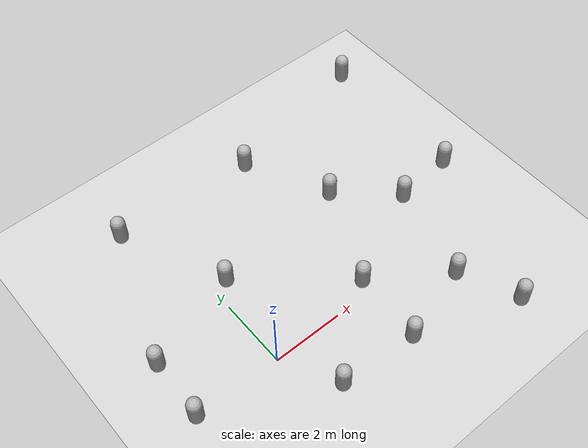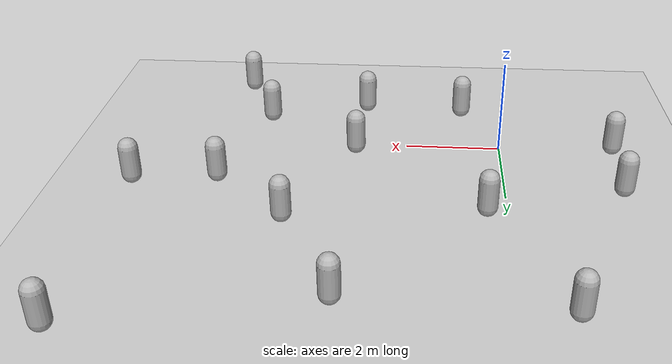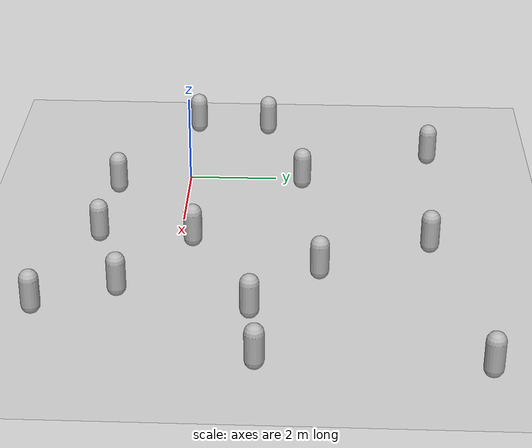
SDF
<sdf version='1.10'>
  <world name='empty'>
    <physics name='1ms' type='ignored'>
      <max_step_size>0.001</max_step_size>
      <real_time_factor>1</real_time_factor>
      <real_time_update_rate>1000</real_time_update_rate>
    </physics>
    <plugin name='gz::sim::systems::Physics' filename='gz-sim-physics-system'/>
    <plugin name='gz::sim::systems::UserCommands' filename='gz-sim-user-commands-system'/>
    <plugin name='gz::sim::systems::SceneBroadcaster' filename='gz-sim-scene-broadcaster-system'/>
    <plugin name='gz::sim::systems::Contact' filename='gz-sim-contact-system'/>
    <gravity>0 0 -9.8000000000000007</gravity>
    <magnetic_field>5.5644999999999998e-06 2.2875799999999999e-05 -4.2388400000000002e-05</magnetic_field>
    <atmosphere type='adiabatic'/>
    <scene>
      <ambient>0.400000006 0.400000006 0.400000006 1</ambient>
      <background>0.699999988 0.699999988 0.699999988 1</background>
      <shadows>true</shadows>
    </scene>
    <model name='ground_plane'>
      <static>true</static>
      <link name='link'>
        <collision name='collision'>
          <geometry>
            <plane>
              <normal>0 0 1</normal>
              <size>100 100</size>
            </plane>
          </geometry>
          <surface>
            <friction>
              <ode/>
            </friction>
            <bounce/>
            <contact/>
          </surface>
        </collision>
        <visual name='visual'>
          <geometry>
            <plane>
              <normal>0 0 1</normal>
              <size>100 100</size>
            </plane>
          </geometry>
          <material>
            <ambient>0.800000012 0.800000012 0.800000012 1</ambient>
            <diffuse>0.800000012 0.800000012 0.800000012 1</diffuse>
            <specular>0.800000012 0.800000012 0.800000012 1</specular>
          </material>
        </visual>
        <pose>0 0 0 0 0 0</pose>
        <inertial>
          <pose>0 0 0 0 0 0</pose>
          <mass>1</mass>
          <inertia>
            <ixx>1</ixx>
            <ixy>0</ixy>
            <ixz>0</ixz>
            <iyy>1</iyy>
            <iyz>0</iyz>
            <izz>1</izz>
          </inertia>
        </inertial>
        <enable_wind>false</enable_wind>
      </link>
      <pose>0 0 0 0 0 0</pose>
      <self_collide>false</self_collide>
    </model>

    <model name='capsule'>
      <pose>3.1028555582278687 0.29210015186440774 0.499999999902001 0 0 0</pose>
      <link name='capsule_link'>
        <inertial>
          <inertia>
            <ixx>0.074153999999999998</ixx>
            <ixy>0</ixy>
            <ixz>0</ixz>
            <iyy>0.074153999999999998</iyy>
            <iyz>0</iyz>
            <izz>0.018769000000000001</izz>
          </inertia>
          <mass>1</mass>
          <pose>0 0 0 0 0 0</pose>
        </inertial>
        <collision name='capsule_collision'>
          <geometry>
            <capsule>
              <radius>0.20000000000000001</radius>
              <length>0.59999999999999998</length>
            </capsule>
          </geometry>
          <surface>
            <friction>
              <ode/>
            </friction>
            <bounce/>
            <contact/>
          </surface>
        </collision>
        <visual name='capsule_visual'>
          <geometry>
            <capsule>
              <radius>0.20000000000000001</radius>
              <length>0.59999999999999998</length>
            </capsule>
          </geometry>
          <material>
            <ambient>0.300000012 0.300000012 0.300000012 1</ambient>
            <diffuse>0.699999988 0.699999988 0.699999988 1</diffuse>
            <specular>1 1 1 1</specular>
          </material>
        </visual>
        <pose>0 0 0 0 0 0</pose>
        <enable_wind>false</enable_wind>
      </link>
      <static>false</static>
      <self_collide>false</self_collide>
    </model>
    <model name='capsule_0'>
      <pose>2.9764970794397616 -1.7477531159464772 0.499999999902001 0 0 0</pose>
      <link name='capsule_link'>
        <inertial>
          <inertia>
            <ixx>0.074153999999999998</ixx>
            <ixy>0</ixy>
            <ixz>0</ixz>
            <iyy>0.074153999999999998</iyy>
            <iyz>0</iyz>
            <izz>0.018769000000000001</izz>
          </inertia>
          <mass>1</mass>
          <pose>0 0 0 0 0 0</pose>
        </inertial>
        <collision name='capsule_collision'>
          <geometry>
            <capsule>
              <radius>0.20000000000000001</radius>
              <length>0.59999999999999998</length>
            </capsule>
          </geometry>
          <surface>
            <friction>
              <ode/>
            </friction>
            <bounce/>
            <contact/>
          </surface>
        </collision>
        <visual name='capsule_visual'>
          <geometry>
            <capsule>
              <radius>0.20000000000000001</radius>
              <length>0.59999999999999998</length>
            </capsule>
          </geometry>
          <material>
            <ambient>0.300000012 0.300000012 0.300000012 1</ambient>
            <diffuse>0.699999988 0.699999988 0.699999988 1</diffuse>
            <specular>1 1 1 1</specular>
          </material>
        </visual>
        <pose>0 0 0 0 0 0</pose>
        <enable_wind>false</enable_wind>
      </link>
      <static>false</static>
      <self_collide>false</self_collide>
    </model>
    <model name='capsule_1'>
      <pose>0.40005568266888902 2.613861205963476 0.499999999902001 0 0 0</pose>
      <link name='capsule_link'>
        <inertial>
          <inertia>
            <ixx>0.074153999999999998</ixx>
            <ixy>0</ixy>
            <ixz>0</ixz>
            <iyy>0.074153999999999998</iyy>
            <iyz>0</iyz>
            <izz>0.018769000000000001</izz>
          </inertia>
          <mass>1</mass>
          <pose>0 0 0 0 0 0</pose>
        </inertial>
        <collision name='capsule_collision'>
          <geometry>
            <capsule>
              <radius>0.20000000000000001</radius>
              <length>0.59999999999999998</length>
            </capsule>
          </geometry>
          <surface>
            <friction>
              <ode/>
            </friction>
            <bounce/>
            <contact/>
          </surface>
        </collision>
        <visual name='capsule_visual'>
          <geometry>
            <capsule>
              <radius>0.20000000000000001</radius>
              <length>0.59999999999999998</length>
            </capsule>
          </geometry>
          <material>
            <ambient>0.300000012 0.300000012 0.300000012 1</ambient>
            <diffuse>0.699999988 0.699999988 0.699999988 1</diffuse>
            <specular>1 1 1 1</specular>
          </material>
        </visual>
        <pose>0 0 0 0 0 0</pose>
        <enable_wind>false</enable_wind>
      </link>
      <static>false</static>
      <self_collide>false</self_collide>
    </model>
    <model name='capsule_2'>
      <pose>4.3292819471069768 3.0317903578579459 0.499999999902001 0 0 0</pose>
      <link name='capsule_link'>
        <inertial>
          <inertia>
            <ixx>0.074153999999999998</ixx>
            <ixy>0</ixy>
            <ixz>0</ixz>
            <iyy>0.074153999999999998</iyy>
            <iyz>0</iyz>
            <izz>0.018769000000000001</izz>
          </inertia>
          <mass>1</mass>
          <pose>0 0 0 0 0 0</pose>
        </inertial>
        <collision name='capsule_collision'>
          <geometry>
            <capsule>
              <radius>0.20000000000000001</radius>
              <length>0.59999999999999998</length>
            </capsule>
          </geometry>
          <surface>
            <friction>
              <ode/>
            </friction>
            <bounce/>
            <contact/>
          </surface>
        </collision>
        <visual name='capsule_visual'>
          <geometry>
            <capsule>
              <radius>0.20000000000000001</radius>
              <length>0.59999999999999998</length>
            </capsule>
          </geometry>
          <material>
            <ambient>0.300000012 0.300000012 0.300000012 1</ambient>
            <diffuse>0.699999988 0.699999988 0.699999988 1</diffuse>
            <specular>1 1 1 1</specular>
          </material>
        </visual>
        <pose>0 0 0 0 0 0</pose>
        <enable_wind>false</enable_wind>
      </link>
      <static>false</static>
      <self_collide>false</self_collide>
    </model>
    <model name='capsule_3'>
      <pose>-2.4285011892432009 0.023450267081283838 0.499999999902001 0 0 0</pose>
      <link name='capsule_link'>
        <inertial>
          <inertia>
            <ixx>0.074153999999999998</ixx>
            <ixy>0</ixy>
            <ixz>0</ixz>
            <iyy>0.074153999999999998</iyy>
            <iyz>0</iyz>
            <izz>0.018769000000000001</izz>
          </inertia>
          <mass>1</mass>
          <pose>0 0 0 0 0 0</pose>
        </inertial>
        <collision name='capsule_collision'>
          <geometry>
            <capsule>
              <radius>0.20000000000000001</radius>
              <length>0.59999999999999998</length>
            </capsule>
          </geometry>
          <surface>
            <friction>
              <ode/>
            </friction>
            <bounce/>
            <contact/>
          </surface>
        </collision>
        <visual name='capsule_visual'>
          <geometry>
            <capsule>
              <radius>0.20000000000000001</radius>
              <length>0.59999999999999998</length>
            </capsule>
          </geometry>
          <material>
            <ambient>0.300000012 0.300000012 0.300000012 1</ambient>
            <diffuse>0.699999988 0.699999988 0.699999988 1</diffuse>
            <specular>1 1 1 1</specular>
          </material>
        </visual>
        <pose>0 0 0 0 0 0</pose>
        <enable_wind>false</enable_wind>
      </link>
      <static>false</static>
      <self_collide>false</self_collide>
    </model>
    <model name='capsule_4'>
      <pose>-0.93578691109180756 5.5724514976650763 0.499999999902001 0 0 0</pose>
      <link name='capsule_link'>
        <inertial>
          <inertia>
            <ixx>0.074153999999999998</ixx>
            <ixy>0</ixy>
            <ixz>0</ixz>
            <iyy>0.074153999999999998</iyy>
            <iyz>0</iyz>
            <izz>0.018769000000000001</izz>
          </inertia>
          <mass>1</mass>
          <pose>0 0 0 0 0 0</pose>
        </inertial>
        <collision name='capsule_collision'>
          <geometry>
            <capsule>
              <radius>0.20000000000000001</radius>
              <length>0.59999999999999998</length>
            </capsule>
          </geometry>
          <surface>
            <friction>
              <ode/>
            </friction>
            <bounce/>
            <contact/>
          </surface>
        </collision>
        <visual name='capsule_visual'>
          <geometry>
            <capsule>
              <radius>0.20000000000000001</radius>
              <length>0.59999999999999998</length>
            </capsule>
          </geometry>
          <material>
            <ambient>0.300000012 0.300000012 0.300000012 1</ambient>
            <diffuse>0.699999988 0.699999988 0.699999988 1</diffuse>
            <specular>1 1 1 1</specular>
          </material>
        </visual>
        <pose>0 0 0 0 0 0</pose>
        <enable_wind>false</enable_wind>
      </link>
      <static>false</static>
      <self_collide>false</self_collide>
    </model>
    <model name='capsule_5'>
      <pose>-2.3636452370842389 1.7392529662626464 0.499999999902001 0 0 0</pose>
      <link name='capsule_link'>
        <inertial>
          <inertia>
            <ixx>0.074153999999999998</ixx>
            <ixy>0</ixy>
            <ixz>0</ixz>
            <iyy>0.074153999999999998</iyy>
            <iyz>0</iyz>
            <izz>0.018769000000000001</izz>
          </inertia>
          <mass>1</mass>
          <pose>0 0 0 0 0 0</pose>
        </inertial>
        <collision name='capsule_collision'>
          <geometry>
            <capsule>
              <radius>0.20000000000000001</radius>
              <length>0.59999999999999998</length>
            </capsule>
          </geometry>
          <surface>
            <friction>
              <ode/>
            </friction>
            <bounce/>
            <contact/>
          </surface>
        </collision>
        <visual name='capsule_visual'>
          <geometry>
            <capsule>
              <radius>0.20000000000000001</radius>
              <length>0.59999999999999998</length>
            </capsule>
          </geometry>
          <material>
            <ambient>0.300000012 0.300000012 0.300000012 1</ambient>
            <diffuse>0.699999988 0.699999988 0.699999988 1</diffuse>
            <specular>1 1 1 1</specular>
          </material>
        </visual>
        <pose>0 0 0 0 0 0</pose>
        <enable_wind>false</enable_wind>
      </link>
      <static>false</static>
      <self_collide>false</self_collide>
    </model>
    <model name='capsule_6'>
      <pose>0.77741402809598625 -1.5936216737611377 0.499999999902001 0 0 0</pose>
      <link name='capsule_link'>
        <inertial>
          <inertia>
            <ixx>0.074153999999999998</ixx>
            <ixy>0</ixy>
            <ixz>0</ixz>
            <iyy>0.074153999999999998</iyy>
            <iyz>0</iyz>
            <izz>0.018769000000000001</izz>
          </inertia>
          <mass>1</mass>
          <pose>0 0 0 0 0 0</pose>
        </inertial>
        <collision name='capsule_collision'>
          <geometry>
            <capsule>
              <radius>0.20000000000000001</radius>
              <length>0.59999999999999998</length>
            </capsule>
          </geometry>
          <surface>
            <friction>
              <ode/>
            </friction>
            <bounce/>
            <contact/>
          </surface>
        </collision>
        <visual name='capsule_visual'>
          <geometry>
            <capsule>
              <radius>0.20000000000000001</radius>
              <length>0.59999999999999998</length>
            </capsule>
          </geometry>
          <material>
            <ambient>0.300000012 0.300000012 0.300000012 1</ambient>
            <diffuse>0.699999988 0.699999988 0.699999988 1</diffuse>
            <specular>1 1 1 1</specular>
          </material>
        </visual>
        <pose>0 0 0 0 0 0</pose>
        <enable_wind>false</enable_wind>
      </link>
      <static>false</static>
      <self_collide>false</self_collide>
    </model>
    <model name='capsule_7'>
      <pose>3.1642604833178494 5.3923690467357561 0.499999999902001 0 0 0</pose>
      <link name='capsule_link'>
        <inertial>
          <inertia>
            <ixx>0.074153999999999998</ixx>
            <ixy>0</ixy>
            <ixz>0</ixz>
            <iyy>0.074153999999999998</iyy>
            <iyz>0</iyz>
            <izz>0.018769000000000001</izz>
          </inertia>
          <mass>1</mass>
          <pose>0 0 0 0 0 0</pose>
        </inertial>
        <collision name='capsule_collision'>
          <geometry>
            <capsule>
              <radius>0.20000000000000001</radius>
              <length>0.59999999999999998</length>
            </capsule>
          </geometry>
          <surface>
            <friction>
              <ode/>
            </friction>
            <bounce/>
            <contact/>
          </surface>
        </collision>
        <visual name='capsule_visual'>
          <geometry>
            <capsule>
              <radius>0.20000000000000001</radius>
              <length>0.59999999999999998</length>
            </capsule>
          </geometry>
          <material>
            <ambient>0.300000012 0.300000012 0.300000012 1</ambient>
            <diffuse>0.699999988 0.699999988 0.699999988 1</diffuse>
            <specular>1 1 1 1</specular>
          </material>
        </visual>
        <pose>0 0 0 0 0 0</pose>
        <enable_wind>false</enable_wind>
      </link>
      <static>false</static>
      <self_collide>false</self_collide>
    </model>
    <model name='capsule_8'>
      <pose>7.6677745814491995 6.3240411817653879 0.499999999902001 0 0 0</pose>
      <link name='capsule_link'>
        <inertial>
          <inertia>
            <ixx>0.074153999999999998</ixx>
            <ixy>0</ixy>
            <ixz>0</ixz>
            <iyy>0.074153999999999998</iyy>
            <iyz>0</iyz>
            <izz>0.018769000000000001</izz>
          </inertia>
          <mass>1</mass>
          <pose>0 0 0 0 0 0</pose>
        </inertial>
        <collision name='capsule_collision'>
          <geometry>
            <capsule>
              <radius>0.20000000000000001</radius>
              <length>0.59999999999999998</length>
            </capsule>
          </geometry>
          <surface>
            <friction>
              <ode/>
            </friction>
            <bounce/>
            <contact/>
          </surface>
        </collision>
        <visual name='capsule_visual'>
          <geometry>
            <capsule>
              <radius>0.20000000000000001</radius>
              <length>0.59999999999999998</length>
            </capsule>
          </geometry>
          <material>
            <ambient>0.300000012 0.300000012 0.300000012 1</ambient>
            <diffuse>0.699999988 0.699999988 0.699999988 1</diffuse>
            <specular>1 1 1 1</specular>
          </material>
        </visual>
        <pose>0 0 0 0 0 0</pose>
        <enable_wind>false</enable_wind>
      </link>
      <static>false</static>
      <self_collide>false</self_collide>
    </model>
    <model name='capsule_9'>
      <pose>7.5912660928471611 1.8024499410205337 0.499999999902001 0 0 0</pose>
      <link name='capsule_link'>
        <inertial>
          <inertia>
            <ixx>0.074153999999999998</ixx>
            <ixy>0</ixy>
            <ixz>0</ixz>
            <iyy>0.074153999999999998</iyy>
            <iyz>0</iyz>
            <izz>0.018769000000000001</izz>
          </inertia>
          <mass>1</mass>
          <pose>0 0 0 0 0 0</pose>
        </inertial>
        <collision name='capsule_collision'>
          <geometry>
            <capsule>
              <radius>0.20000000000000001</radius>
              <length>0.59999999999999998</length>
            </capsule>
          </geometry>
          <surface>
            <friction>
              <ode/>
            </friction>
            <bounce/>
            <contact/>
          </surface>
        </collision>
        <visual name='capsule_visual'>
          <geometry>
            <capsule>
              <radius>0.20000000000000001</radius>
              <length>0.59999999999999998</length>
            </capsule>
          </geometry>
          <material>
            <ambient>0.300000012 0.300000012 0.300000012 1</ambient>
            <diffuse>0.699999988 0.699999988 0.699999988 1</diffuse>
            <specular>1 1 1 1</specular>
          </material>
        </visual>
        <pose>0 0 0 0 0 0</pose>
        <enable_wind>false</enable_wind>
      </link>
      <static>false</static>
      <self_collide>false</self_collide>
    </model>
    <model name='capsule_10'>
      <pose>5.1418869306255353 -1.1199790983607856 0.499999999902001 0 0 0</pose>
      <link name='capsule_link'>
        <inertial>
          <inertia>
            <ixx>0.074153999999999998</ixx>
            <ixy>0</ixy>
            <ixz>0</ixz>
            <iyy>0.074153999999999998</iyy>
            <iyz>0</iyz>
            <izz>0.018769000000000001</izz>
          </inertia>
          <mass>1</mass>
          <pose>0 0 0 0 0 0</pose>
        </inertial>
        <collision name='capsule_collision'>
          <geometry>
            <capsule>
              <radius>0.20000000000000001</radius>
              <length>0.59999999999999998</length>
            </capsule>
          </geometry>
          <surface>
            <friction>
              <ode/>
            </friction>
            <bounce/>
            <contact/>
          </surface>
        </collision>
        <visual name='capsule_visual'>
          <geometry>
            <capsule>
              <radius>0.20000000000000001</radius>
              <length>0.59999999999999998</length>
            </capsule>
          </geometry>
          <material>
            <ambient>0.300000012 0.300000012 0.300000012 1</ambient>
            <diffuse>0.699999988 0.699999988 0.699999988 1</diffuse>
            <specular>1 1 1 1</specular>
          </material>
        </visual>
        <pose>0 0 0 0 0 0</pose>
        <enable_wind>false</enable_wind>
      </link>
      <static>false</static>
      <self_collide>false</self_collide>
    </model>
    <model name='capsule_11'>
      <pose>5.8551297061172427 1.6352693473340654 0.499999999902001 0 0 0</pose>
      <link name='capsule_link'>
        <inertial>
          <inertia>
            <ixx>0.074153999999999998</ixx>
            <ixy>0</ixy>
            <ixz>0</ixz>
            <iyy>0.074153999999999998</iyy>
            <iyz>0</iyz>
            <izz>0.018769000000000001</izz>
          </inertia>
          <mass>1</mass>
          <pose>0 0 0 0 0 0</pose>
        </inertial>
        <collision name='capsule_collision'>
          <geometry>
            <capsule>
              <radius>0.20000000000000001</radius>
              <length>0.59999999999999998</length>
            </capsule>
          </geometry>
          <surface>
            <friction>
              <ode/>
            </friction>
            <bounce/>
            <contact/>
          </surface>
        </collision>
        <visual name='capsule_visual'>
          <geometry>
            <capsule>
              <radius>0.20000000000000001</radius>
              <length>0.59999999999999998</length>
            </capsule>
          </geometry>
          <material>
            <ambient>0.300000012 0.300000012 0.300000012 1</ambient>
            <diffuse>0.699999988 0.699999988 0.699999988 1</diffuse>
            <specular>1 1 1 1</specular>
          </material>
        </visual>
        <pose>0 0 0 0 0 0</pose>
        <enable_wind>false</enable_wind>
      </link>
      <static>false</static>
      <self_collide>false</self_collide>
    </model>
    <model name='capsule_12'>
      <pose>5.866361506689481 -2.7659871885911129 0.499999999902001 0 0 0</pose>
      <link name='capsule_link'>
        <inertial>
          <inertia>
            <ixx>0.074153999999999998</ixx>
            <ixy>0</ixy>
            <ixz>0</ixz>
            <iyy>0.074153999999999998</iyy>
            <iyz>0</iyz>
            <izz>0.018769000000000001</izz>
          </inertia>
          <mass>1</mass>
          <pose>0 0 0 0 0 0</pose>
        </inertial>
        <collision name='capsule_collision'>
          <geometry>
            <capsule>
              <radius>0.20000000000000001</radius>
              <length>0.59999999999999998</length>
            </capsule>
          </geometry>
          <surface>
            <friction>
              <ode/>
            </friction>
            <bounce/>
            <contact/>
          </surface>
        </collision>
        <visual name='capsule_visual'>
          <geometry>
            <capsule>
              <radius>0.20000000000000001</radius>
              <length>0.59999999999999998</length>
            </capsule>
          </geometry>
          <material>
            <ambient>0.300000012 0.300000012 0.300000012 1</ambient>
            <diffuse>0.699999988 0.699999988 0.699999988 1</diffuse>
            <specular>1 1 1 1</specular>
          </material>
        </visual>
        <pose>0 0 0 0 0 0</pose>
        <enable_wind>false</enable_wind>
      </link>
      <static>false</static>
      <self_collide>false</self_collide>
    </model>
    <light name='sun' type='directional'>
      <pose>0 0 10 0 0 0</pose>
      <cast_shadows>true</cast_shadows>
      <intensity>1</intensity>
      <direction>-0.5 0.10000000000000001 -0.90000000000000002</direction>
      <diffuse>0.800000012 0.800000012 0.800000012 1</diffuse>
      <specular>0.200000003 0.200000003 0.200000003 1</specular>
      <attenuation>
        <range>1000</range>
        <linear>0.01</linear>
        <constant>0.90000000000000002</constant>
        <quadratic>0.001</quadratic>
      </attenuation>
      <spot>
        <inner_angle>0</inner_angle>
        <outer_angle>0</outer_angle>
        <falloff>0</falloff>
      </spot>
    </light>
  </world>
</sdf>
